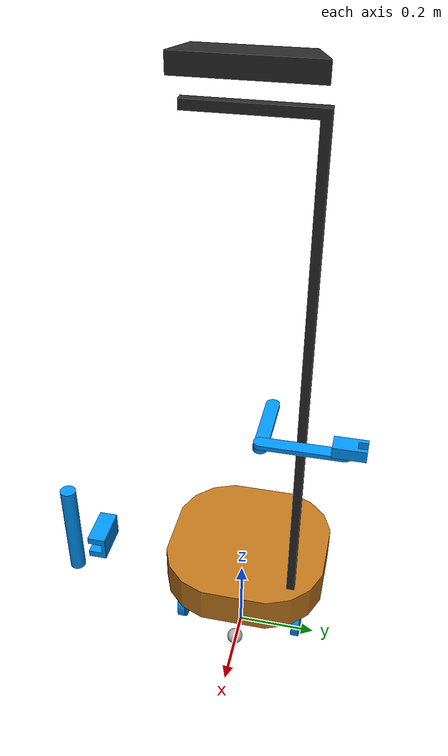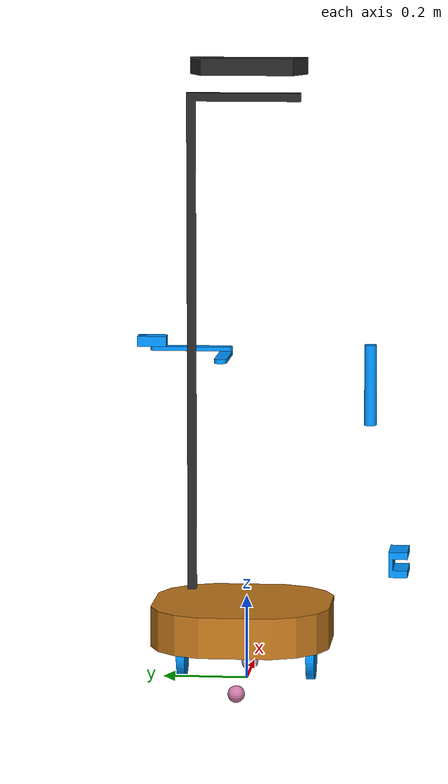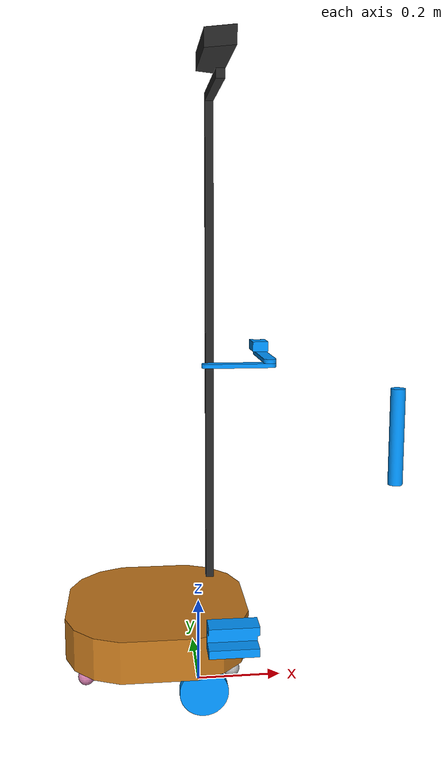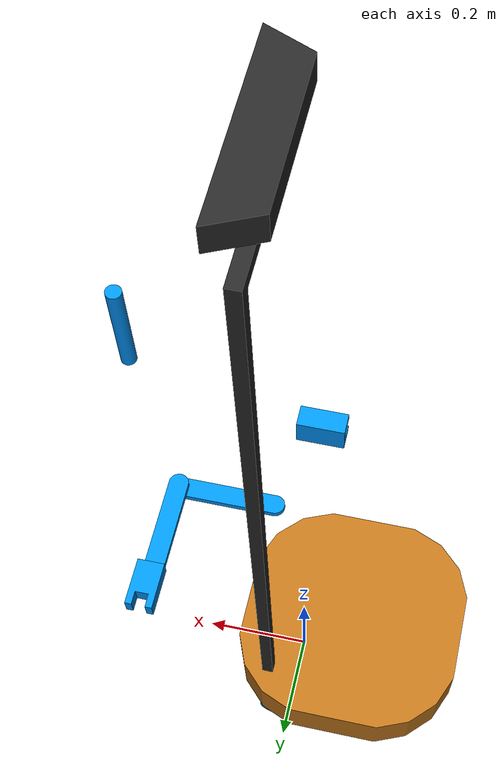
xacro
<?xml version="1.0"?>
<!-- Gazebo wrapper around arips_description. Adds everything the real robot gets from
     elsewhere (static TFs in arips_launch, the base microcontroller, sensor drivers). -->
<robot name="arips" xmlns:xacro="http://www.ros.org/wiki/xacro">
    <xacro:arg name="sim" default="true" />
    <xacro:arg name="controllers_file" default="$(find arips_gazebo)/config/controllers.yaml" />

    <xacro:include filename="$(find arips_description)/urdf/arips_onshape.urdf.xacro" />

    <xacro:property name="PI" value="3.14159265359" />
    <xacro:property name="wheel_radius" value="0.055" />
    <xacro:property name="wheel_width" value="0.02" />
    <xacro:property name="wheel_separation" value="0.31" />
    <xacro:property name="wheel_mass" value="0.3" />
    <xacro:property name="caster_radius" value="0.02" />
    <xacro:property name="caster_mass" value="0.05" />

    <link name="arips_wheel_center" />
    <joint name="arips_wheel_center_joint" type="fixed">
        <origin xyz="-0.1 0 0" rpy="0 0 0" />
        <parent link="arips_wheel_center" />
        <child link="base_link" />
    </joint>

    <!-- The Onshape export has near-zero masses; give the base a realistic weight for stable contact -->
    <link name="sim_ballast">
        <inertial>
            <mass value="6.0" />
            <origin xyz="0 0 0" rpy="0 0 0" />
            <inertia ixx="0.093" ixy="0" ixz="0" iyy="0.093" iyz="0" izz="0.176" />
        </inertial>
    </link>
    <joint name="sim_ballast_joint" type="fixed">
        <origin xyz="0 0 0.16" rpy="0 0 0" />
        <parent link="base_link" />
        <child link="sim_ballast" />
    </joint>

    <!-- Drive wheels. Collision only, the visuals come from the left_wheel/right_wheel meshes. -->
    <xacro:macro name="drive_wheel" params="side y">
        <link name="${side}_drive_wheel">
            <inertial>
                <mass value="${wheel_mass}" />
                <origin xyz="0 0 0" rpy="0 0 0" />
                <inertia ixx="${wheel_mass * (3 * wheel_radius**2 + wheel_width**2) / 12}" ixy="0" ixz="0"
                         iyy="${wheel_mass * wheel_radius**2 / 2}" iyz="0"
                         izz="${wheel_mass * (3 * wheel_radius**2 + wheel_width**2) / 12}" />
            </inertial>
            <collision>
                <origin xyz="0 0 0" rpy="${PI / 2} 0 0" />
                <geometry>
                    <cylinder radius="${wheel_radius}" length="${wheel_width}" />
                </geometry>
            </collision>
        </link>
        <joint name="${side}_drive_wheel_joint" type="continuous">
            <origin xyz="0 ${y} ${wheel_radius}" rpy="0 0 0" />
            <axis xyz="0 1 0" />
            <parent link="arips_wheel_center" />
            <child link="${side}_drive_wheel" />
        </joint>
        <gazebo reference="${side}_drive_wheel">
            <mu1>1.0</mu1>
            <mu2>1.0</mu2>
        </gazebo>
    </xacro:macro>

    <xacro:drive_wheel side="left" y="${wheel_separation / 2}" />
    <xacro:drive_wheel side="right" y="${-wheel_separation / 2}" />

    <!-- Frictionless casters. The front one hovers 2 mm above the floor and only catches tipping. -->
    <xacro:macro name="caster" params="name x lift">
        <link name="${name}">
            <inertial>
                <mass value="${caster_mass}" />
                <origin xyz="0 0 0" rpy="0 0 0" />
                <inertia ixx="${0.4 * caster_mass * caster_radius**2}" ixy="0" ixz="0"
                         iyy="${0.4 * caster_mass * caster_radius**2}" iyz="0"
                         izz="${0.4 * caster_mass * caster_radius**2}" />
            </inertial>
            <visual>
                <geometry>
                    <sphere radius="${caster_radius}" />
                </geometry>
            </visual>
            <collision>
                <geometry>
                    <sphere radius="${caster_radius}" />
                </geometry>
            </collision>
        </link>
        <joint name="${name}_joint" type="fixed">
            <origin xyz="${x} 0 ${caster_radius + lift}" rpy="0 0 0" />
            <parent link="base_link" />
            <child link="${name}" />
        </joint>
        <gazebo reference="${name}">
            <mu1>0.0</mu1>
            <mu2>0.0</mu2>
        </gazebo>
    </xacro:macro>

    <xacro:caster name="rear_caster" x="-0.17" lift="0.0" />
    <xacro:caster name="front_caster" x="0.18" lift="0.002" />

    <!-- Lidar (YDLIDAR X4), same pose as the static TF in arips_launch/lidar.launch.py -->
    <link name="laser_frame" />
    <joint name="laser_joint" type="fixed">
        <origin xyz="0 0 0.165" rpy="0 0 ${PI}" />
        <parent link="base_link" />
        <child link="laser_frame" />
    </joint>
    <gazebo reference="laser_frame">
        <sensor name="lidar" type="gpu_lidar">
            <topic>scan</topic>
            <frame_id>laser_frame</frame_id>
            <update_rate>10</update_rate>
            <always_on>true</always_on>
            <visualize>true</visualize>
            <lidar>
                <scan>
                    <horizontal>
                        <samples>500</samples>
                        <resolution>1</resolution>
                        <min_angle>${-PI}</min_angle>
                        <max_angle>${PI}</max_angle>
                    </horizontal>
                </scan>
                <!-- min range is larger than the base radius, so the lidar does not see the robot itself -->
                <range>
                    <min>0.235</min>
                    <max>12.0</max>
                    <resolution>0.01</resolution>
                </range>
                <noise>
                    <type>gaussian</type>
                    <mean>0.0</mean>
                    <stddev>0.01</stddev>
                </noise>
            </lidar>
        </sensor>
    </gazebo>

    <!-- Kinect, same pose as the static TF in arips_launch/startup.launch.py -->
    <link name="kinect_link" />
    <joint name="kinect_link_joint" type="fixed">
        <origin xyz="-0.025 0 0.03" rpy="0 0 ${-PI / 2}" />
        <parent link="kinect_mount" />
        <child link="kinect_link" />
    </joint>

    <!-- Camera sensor in front of the Kinect mesh, looking along kinect_mount +x -->
    <link name="kinect_camera_link" />
    <joint name="kinect_camera_joint" type="fixed">
        <origin xyz="0.035 0 0.05" rpy="0 0 0" />
        <parent link="kinect_mount" />
        <child link="kinect_camera_link" />
    </joint>
    <link name="kinect_camera_optical_frame" />
    <joint name="kinect_camera_optical_joint" type="fixed">
        <origin xyz="0 0 0" rpy="${-PI / 2} 0 ${-PI / 2}" />
        <parent link="kinect_camera_link" />
        <child link="kinect_camera_optical_frame" />
    </joint>
    <gazebo reference="kinect_camera_link">
        <sensor name="kinect" type="rgbd_camera">
            <topic>kinect</topic>
            <frame_id>kinect_camera_optical_frame</frame_id>
            <update_rate>30</update_rate>
            <always_on>true</always_on>
            <camera>
                <horizontal_fov>1.581</horizontal_fov>
                <image>
                    <width>640</width>
                    <height>480</height>
                    <format>R8G8B8</format>
                </image>
                <clip>
                    <near>0.05</near>
                    <far>10.0</far>
                </clip>
                <depth_camera>
                    <clip>
                        <near>0.25</near>
                        <far>3.0</far>
                    </clip>
                </depth_camera>
            </camera>
        </sensor>
    </gazebo>

    <ros2_control name="arips_sim" type="system">
        <hardware>
            <plugin>gz_ros2_control/GazeboSimSystem</plugin>
        </hardware>
        <xacro:macro name="velocity_joint" params="name">
            <joint name="${name}">
                <command_interface name="velocity" />
                <state_interface name="position" />
                <state_interface name="velocity" />
            </joint>
        </xacro:macro>
        <xacro:macro name="position_joint" params="name initial_value:=0.0">
            <joint name="${name}">
                <command_interface name="position" />
                <state_interface name="position">
                    <param name="initial_value">${initial_value}</param>
                </state_interface>
                <state_interface name="velocity" />
            </joint>
        </xacro:macro>
        <xacro:velocity_joint name="left_drive_wheel_joint" />
        <xacro:velocity_joint name="right_drive_wheel_joint" />
        <!-- Start pose: arm in "door_grasp_folded" (arips_moveit_config/config/arips.srdf),
             Kinect tilted -60 deg -->
        <xacro:position_joint name="joint_slider" initial_value="0.8" />
        <xacro:position_joint name="joint_2" initial_value="-1.7424" />
        <xacro:position_joint name="joint_3" initial_value="1.8494" />
        <xacro:position_joint name="joint_4" initial_value="-1.4444" />
        <xacro:position_joint name="joint_door_gripper" />
        <xacro:position_joint name="kinect_joint" initial_value="${-PI / 3}" />
    </ros2_control>

    <gazebo>
        <plugin filename="gz_ros2_control-system" name="gz_ros2_control::GazeboSimROS2ControlPlugin">
            <parameters>$(arg controllers_file)</parameters>
        </plugin>
        <plugin filename="gz-sim-odometry-publisher-system" name="gz::sim::systems::OdometryPublisher">
            <odom_frame>odom</odom_frame>
            <robot_base_frame>arips_wheel_center</robot_base_frame>
            <odom_publish_frequency>50</odom_publish_frequency>
            <odom_topic>ground_truth/odom</odom_topic>
            <tf_topic>ground_truth/tf</tf_topic>
            <dimensions>2</dimensions>
        </plugin>
    </gazebo>
</robot>

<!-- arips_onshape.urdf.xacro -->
<!--URDF generated by ONSHAPE BY PTC INC, 1.222-->
<robot name="arips" xmlns:xacro="http://www.ros.org/wiki/xacro">
    <xacro:arg name="use_ros2_control" default="false" />
    <xacro:arg name="serial_port" default="/dev/feetech_servo" />
    <xacro:arg name="baud_rate" default="500000" />
    <xacro:arg name="arm_enabled" default="true" />
    <xacro:arg name="kinect_enabled" default="true" />
    <xacro:arg name="enable_mock_mode" default="false" />
    <xacro:arg name="sim" default="false" />
    <xacro:include filename="$(find arips_description)/urdf/arips.ros2_control.xacro" />
    <link name="alu">
        <inertial>
            <mass value="0.0005768" />
            <origin xyz="0.14 0.111595 0.904595" rpy="0 -0 0" />
            <inertia ixx="8.68884e-05" ixy="0" ixz="0" iyy="8.48644e-05" iyz="6.53947e-06" izz="2.06249e-06" />
        </inertial>
        <visual>
            <origin xyz="0 0 0" rpy="0 -0 0" />
            <geometry>
                <mesh filename="package://arips_description/meshes/Alu.stl" scale="1 1 1" />
            </geometry>
            <material name="0.156863_0.156863_0.156863_0.000000_0.000000">
                <color rgba="0.156863 0.156863 0.156863 1" />
            </material>
        </visual>
        <collision>
            <origin xyz="0 0 0" rpy="0 -0 0" />
            <geometry>
                <mesh filename="package://arips_description/meshes/Alu.stl" scale="1 1 1" />
            </geometry>
        </collision>
    </link>
    <link name="base_link">
        <inertial>
            <mass value="0.0149878" />
            <origin xyz="-3.78648e-18 -4.2386e-18 0.159" rpy="0 -0 0" />
            <inertia ixx="0.000198722" ixy="0" ixz="0" iyy="0.000198722" iyz="0" izz="0.000374423" />
        </inertial>
        <visual>
            <origin xyz="0 0 0" rpy="0 -0 0" />
            <geometry>
                <mesh filename="package://arips_description/meshes/base_link.stl" scale="1 1 1" />
            </geometry>
            <material name="0.756863_0.462745_0.109804_0.000000_0.000000">
                <color rgba="0.756863 0.462745 0.109804 1" />
            </material>
        </visual>
        <collision>
            <origin xyz="0 0 0" rpy="0 -0 0" />
            <geometry>
                <mesh filename="package://arips_description/meshes/base_link.stl" scale="1 1 1" />
            </geometry>
        </collision>
    </link>
    <link name="door_gripper">
        <inertial>
            <mass value="0.000180456" />
            <origin xyz="-1.64285e-18 -0.0248816 -4.02491e-17" rpy="0 -0 0" />
            <inertia ixx="1.12954e-07" ixy="0" ixz="0" iyy="2.30182e-07" iyz="0" izz="1.83532e-07" />
        </inertial>
        <visual>
            <origin xyz="0 -0.005 0" rpy="0 -0 0" />
            <geometry>
                <mesh filename="package://arips_description/meshes/Door_gripper.stl" scale="1 1 1" />
            </geometry>
            <material name="0.000000_0.588235_1.000000_0.000000_0.000000">
                <color rgba="0 0.588235 1 1" />
            </material>
        </visual>
        <collision>
            <origin xyz="0 -0.005 0" rpy="0 -0 0" />
            <geometry>
                <mesh filename="package://arips_description/meshes/Door_gripper.stl" scale="1 1 1" />
            </geometry>
        </collision>
    </link>
    <link name="kinect_mount">
        <inertial>
            <mass value="0.00065" />
            <origin xyz="0.0013 0.005 0.05" rpy="0 -0 0" />
            <inertia ixx="3.52083e-06" ixy="0" ixz="0" iyy="3.14422e-07" iyz="0" izz="3.66192e-06" />
        </inertial>
        <visual>
            <origin xyz="-0.14 0.005 -1.4114" rpy="0 -0 0" />
            <geometry>
                <mesh filename="package://arips_description/meshes/Kinect.stl" scale="1 1 1" />
            </geometry>
            <material name="0.156863_0.156863_0.156863_0.000000_0.000000">
                <color rgba="0.156863 0.156863 0.156863 1" />
            </material>
        </visual>
        <collision>
            <origin xyz="-0.14 0.005 -1.4114" rpy="0 -0 0" />
            <geometry>
                <mesh filename="package://arips_description/meshes/Kinect.stl" scale="1 1 1" />
            </geometry>
        </collision>
    </link>
    <link name="left_wheel">
        <inertial>
            <mass value="0.000190066" />
            <origin xyz="0.1 0.155 0.055" rpy="0 -0 0" />
            <inertia ixx="1.50073e-07" ixy="0" ixz="0" iyy="2.87475e-07" iyz="0" izz="1.50073e-07" />
        </inertial>
        <visual>
            <origin xyz="0 0 0" rpy="0 -0 0" />
            <geometry>
                <mesh filename="package://arips_description/meshes/left_wheel.stl" scale="1 1 1" />
            </geometry>
            <material name="0.000000_0.588235_1.000000_0.000000_0.000000">
                <color rgba="0 0.588235 1 1" />
            </material>
        </visual>
        <!-- Gazebo drives with its own wheel joints, so the fixed wheel meshes must not touch the floor -->
        <xacro:unless value="$(arg sim)">
            <collision>
                <origin xyz="0 0 0" rpy="0 -0 0" />
                <geometry>
                    <mesh filename="package://arips_description/meshes/left_wheel.stl" scale="1 1 1" />
                </geometry>
            </collision>
        </xacro:unless>
    </link>
    <link name="link_0">
        <inertial>
            <mass value="0.000359788" />
            <origin xyz="-0.02775 0.0035 0.037" rpy="0 -0 0" />
            <inertia ixx="2.22229e-07" ixy="0" ixz="0" iyy="5.30275e-07" iyz="0" izz="4.24138e-07" />
        </inertial>
        <visual>
            <origin xyz="0 0 -0.192" rpy="0 -0 0" />
            <geometry>
                <mesh filename="package://arips_description/meshes/link_0.stl" scale="1 1 1" />
            </geometry>
            <material name="0.000000_0.588235_1.000000_0.000000_0.000000">
                <color rgba="0 0.588235 1 1" />
            </material>
        </visual>
        <collision>
            <origin xyz="0 0 -0.192" rpy="0 -0 0" />
            <geometry>
                <mesh filename="package://arips_description/meshes/link_0.stl" scale="1 1 1" />
            </geometry>
        </collision>
    </link>
    <link name="link_1">
        <inertial>
            <mass value="0.0003603" />
            <origin xyz="-0.0729 -6.73556e-19 -0.03355" rpy="0 -0 0" />
            <inertia ixx="1.65931e-07" ixy="0" ixz="0" iyy="9.80594e-07" iyz="0" izz="8.76155e-07" />
        </inertial>
        <visual>
            <origin xyz="0.0962 -6.73556e-19 -0.25755" rpy="0 -0 0" />
            <geometry>
                <mesh filename="package://arips_description/meshes/link_1.stl" scale="1 1 1" />
            </geometry>
            <material name="0.000000_0.588235_1.000000_0.000000_0.000000">
                <color rgba="0 0.588235 1 1" />
            </material>
        </visual>
        <collision>
            <origin xyz="0.0962 -6.73556e-19 -0.25755" rpy="0 -0 0" />
            <geometry>
                <mesh filename="package://arips_description/meshes/link_1.stl" scale="1 1 1" />
            </geometry>
        </collision>
    </link>
    <link name="link_2">
        <inertial>
            <mass value="0.000317356" />
            <origin xyz="-0.0629 -6.43626e-19 -0.03355" rpy="0 -0 0" />
            <inertia ixx="1.46153e-07" ixy="0" ixz="0" iyy="6.96789e-07" iyz="0" izz="6.04797e-07" />
        </inertial>
        <visual>
            <origin xyz="0.2662 -6.73556e-19 -0.25755" rpy="0 -0 0" />
            <geometry>
                <mesh filename="package://arips_description/meshes/link_2.stl" scale="1 1 1" />
            </geometry>
            <material name="0.000000_0.588235_1.000000_0.000000_0.000000">
                <color rgba="0 0.588235 1 1" />
            </material>
        </visual>
        <collision>
            <origin xyz="0.2662 -6.73556e-19 -0.25755" rpy="0 -0 0" />
            <geometry>
                <mesh filename="package://arips_description/meshes/link_2.stl" scale="1 1 1" />
            </geometry>
        </collision>
    </link>
    <link name="link_3">
        <inertial>
            <mass value="0.000135621" />
            <origin xyz="5.55112e-17 -0.0227949 -0.031" rpy="0 -0 0" />
            <inertia ixx="9.72341e-08" ixy="0" ixz="0" iyy="5.514e-08" iyz="0" izz="6.5486e-08" />
        </inertial>
        <visual>
            <origin xyz="0.4162 4.57793e-17 -0.20595" rpy="0 -0 0" />
            <geometry>
                <mesh filename="package://arips_description/meshes/link_3.stl" scale="1 1 1" />
            </geometry>
            <material name="0.000000_0.588235_1.000000_0.000000_0.000000">
                <color rgba="0 0.588235 1 1" />
            </material>
        </visual>
        <collision>
            <origin xyz="0.4162 4.57793e-17 -0.20595" rpy="0 -0 0" />
            <geometry>
                <mesh filename="package://arips_description/meshes/link_3.stl" scale="1 1 1" />
            </geometry>
        </collision>
    </link>
    <link name="right_wheel">
        <inertial>
            <mass value="0.000190066" />
            <origin xyz="0.1 -0.155 0.055" rpy="0 -0 0" />
            <inertia ixx="1.50073e-07" ixy="0" ixz="0" iyy="2.87475e-07" iyz="0" izz="1.50073e-07" />
        </inertial>
        <visual>
            <origin xyz="0 0 0" rpy="0 -0 0" />
            <geometry>
                <mesh filename="package://arips_description/meshes/right_wheel.stl" scale="1 1 1" />
            </geometry>
            <material name="0.000000_0.588235_1.000000_0.000000_0.000000">
                <color rgba="0 0.588235 1 1" />
            </material>
        </visual>
        <!-- Gazebo drives with its own wheel joints, so the fixed wheel meshes must not touch the floor -->
        <xacro:unless value="$(arg sim)">
            <collision>
                <origin xyz="0 0 0" rpy="0 -0 0" />
                <geometry>
                    <mesh filename="package://arips_description/meshes/right_wheel.stl" scale="1 1 1" />
                </geometry>
            </collision>
        </xacro:unless>
    </link>
    <joint name="group_1_fastened_joint" type="fixed">
        <origin xyz="0 0 0" rpy="0 -0 0" />
        <axis xyz="-0 -0 -1" />
        <parent link="base_link" />
        <child link="left_wheel" />
    </joint>
    <joint name="group_1_fastened_joint_1" type="fixed">
        <origin xyz="0 0 0" rpy="0 -0 0" />
        <axis xyz="-0 -0 -1" />
        <parent link="left_wheel" />
        <child link="right_wheel" />
    </joint>
    <joint name="group_1_fastened_joint_2" type="fixed">
        <origin xyz="0 0 0" rpy="0 -0 0" />
        <axis xyz="-0 -0 -1" />
        <parent link="right_wheel" />
        <child link="alu" />
    </joint>
    <joint name="joint_2" type="revolute">
        <origin xyz="-0.0962 2.77556e-17 0.06555" rpy="1.9945e-20 8.84458e-20 -5.55112e-17" />
        <axis xyz="0 0 1" />
        <parent link="link_0" />
        <child link="link_1" />
        <limit effort="1" velocity="2" lower="-2.26893" upper="2.26893" />
    </joint>
    <joint name="joint_3" type="revolute">
        <origin xyz="-0.17 5.55112e-17 0" rpy="-2.75035e-20 -8.55668e-20 1.98448e-30" />
        <axis xyz="0 0 1" />
        <parent link="link_1" />
        <child link="link_2" />
        <limit effort="1" velocity="2" lower="-2.44346" upper="2.44346" />
    </joint>
    <joint name="joint_4" type="revolute">
        <origin xyz="-0.15 -3.33067e-16 -0.0516" rpy="1.35577e-20 5.59002e-22 -1.5708" />
        <axis xyz="-0 -0 -1" />
        <parent link="link_2" />
        <child link="link_3" />
        <limit effort="1" velocity="2" lower="-2.44346" upper="2.44346" />
    </joint>
    <joint name="joint_door_gripper" type="continuous">
        <origin xyz="-2.77556e-16 -0.0533 -0.0248" rpy="1.39607e-20 -5.75927e-18 -9.86077e-32" />
        <axis xyz="0 -1 0" />
        <parent link="link_3" />
        <child link="door_gripper" />
    </joint>
    <joint name="joint_slider" type="prismatic">
        <origin xyz="0.14 0.135 0.292" rpy="0 -0 1.5708" />
        <axis xyz="0 0 1" />
        <parent link="base_link" />
        <child link="link_0" />
        <limit effort="1" velocity="0.2" lower="0.0" upper="0.871" />
    </joint>
    <joint name="kinect_joint" type="revolute">
        <origin xyz="0.14 -0.005 1.4114" rpy="0 -0 0" />
        <axis xyz="0 -1 0" />
        <parent link="base_link" />
        <child link="kinect_mount" />
        <limit effort="1" velocity="1" lower="-1.65806" upper="0.5236" />
    </joint>

    <xacro:if value="$(arg use_ros2_control)">
        <xacro:ros2_control_arips serial_port="$(arg serial_port)" baud_rate="$(arg baud_rate)" arm_enabled="$(arg arm_enabled)" kinect_enabled="$(arg kinect_enabled)" enable_mock_mode="'$(arg enable_mock_mode)'" />
    </xacro:if>
</robot>
